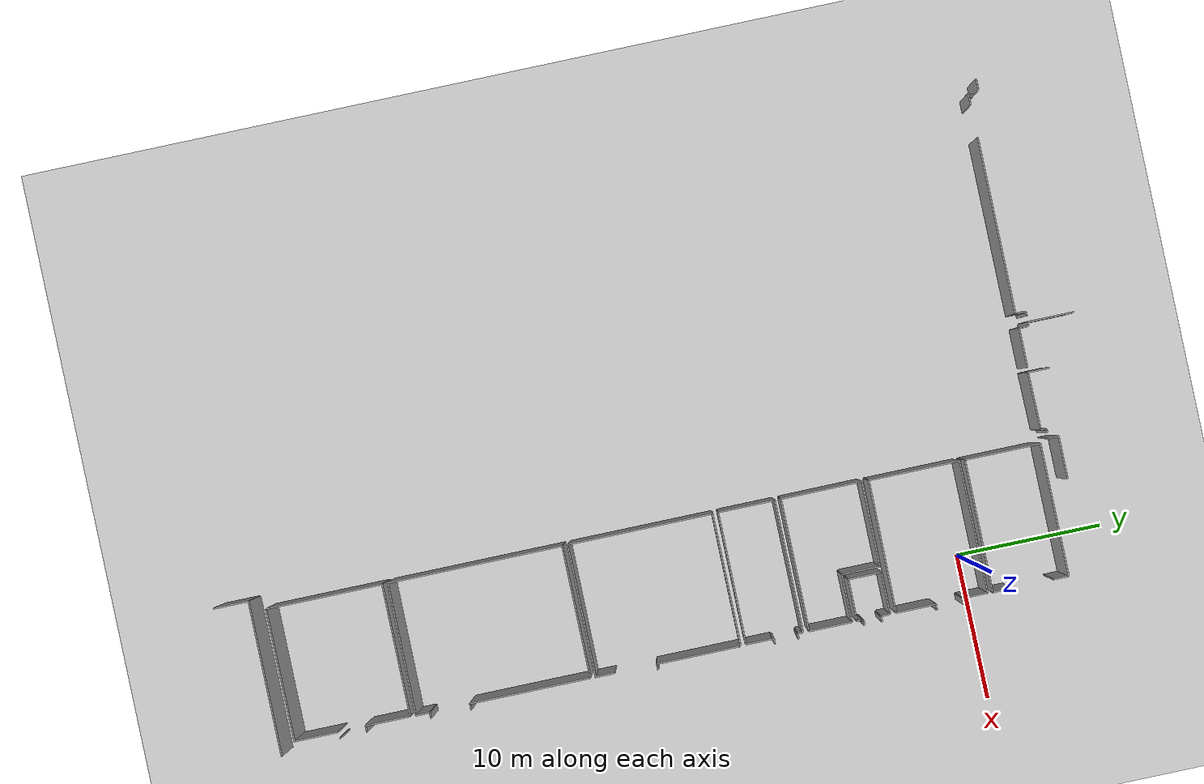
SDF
<sdf version="1.6">
 <world name="default">
  <model name="ground_plane">
   <static>1</static>
   <link name="link">
    <collision name="collision">
     <geometry><plane><normal>0 0 1</normal><size>100 100</size></plane></geometry>
     <surface><friction><ode><mu>100</mu><mu2>50</mu2></ode></friction></surface>
    </collision>
    <visual name="visual">
     <cast_shadows>0</cast_shadows>
     <geometry><plane><normal>0 0 1</normal><size>100 100</size></plane></geometry>
     <material>
      <script><uri>file://media/materials/scripts/gazebo.material</uri><name>Gazebo/Grey</name></script>
     </material>
    </visual>
   </link>
  </model>
  <model name="0510035739_A_40_1_102">
   <static>1</static>
   <link name="Wall_263">
    <collision name="Wall_263_Collision">
     <geometry><box><size>0.239437678066 0.1 2.5</size></box></geometry>
     <pose>0.119718839033 0 1.25 0 0 0</pose>
    </collision>
    <visual name="Wall_263_Visual">
     <pose>0.119718839033 0 1.25 0 0 0</pose>
     <geometry><box><size>0.239437678066 0.1 2.5</size></box></geometry>
     <material>
      <script><uri>file://media/materials/scripts/gazebo.material</uri><name>Gazebo/Grey</name></script>
      <ambient>1 1 1 1</ambient>
     </material>
    </visual>
    <pose>77.4300695516 -42.3644215988 0 0 0 3.14159265359</pose>
   </link>
   <link name="Wall_264">
    <collision name="Wall_264_Collision">
     <geometry><box><size>0.13298530871 0.1 2.5</size></box></geometry>
     <pose>0.0664926543552 0 1.25 0 0 0</pose>
    </collision>
    <visual name="Wall_264_Visual">
     <pose>0.0664926543552 0 1.25 0 0 0</pose>
     <geometry><box><size>0.13298530871 0.1 2.5</size></box></geometry>
     <material>
      <script><uri>file://media/materials/scripts/gazebo.material</uri><name>Gazebo/Grey</name></script>
      <ambient>1 1 1 1</ambient>
     </material>
    </visual>
    <pose>77.1906318735 -42.3644215988 0 0 0 -2.09873290124</pose>
   </link>
   <link name="Wall_265">
    <collision name="Wall_265_Collision">
     <geometry><box><size>0.603179171979 0.1 2.5</size></box></geometry>
     <pose>0.301589585989 0 1.25 0 0 0</pose>
    </collision>
    <visual name="Wall_265_Visual">
     <pose>0.301589585989 0 1.25 0 0 0</pose>
     <geometry><box><size>0.603179171979 0.1 2.5</size></box></geometry>
     <material>
      <script><uri>file://media/materials/scripts/gazebo.material</uri><name>Gazebo/Grey</name></script>
      <ambient>1 1 1 1</ambient>
     </material>
    </visual>
    <pose>77.1236402678 -42.4793007401 0 0 0 -1.57079632679</pose>
   </link>
   <link name="Wall_266">
    <collision name="Wall_266_Collision">
     <geometry><box><size>12.0536493231 0.1 2.5</size></box></geometry>
     <pose>6.02682466157 0 1.25 0 0 0</pose>
    </collision>
    <visual name="Wall_266_Visual">
     <pose>6.02682466157 0 1.25 0 0 0</pose>
     <geometry><box><size>12.0536493231 0.1 2.5</size></box></geometry>
     <material>
      <script><uri>file://media/materials/scripts/gazebo.material</uri><name>Gazebo/Grey</name></script>
      <ambient>1 1 1 1</ambient>
     </material>
    </visual>
    <pose>77.1236402678 -43.0824799121 0 0 0 3.14159265359</pose>
   </link>
   <link name="Wall_267">
    <collision name="Wall_267_Collision">
     <geometry><box><size>0.799314291245 0.1 2.5</size></box></geometry>
     <pose>0.399657145623 0 1.25 0 0 0</pose>
    </collision>
    <visual name="Wall_267_Visual">
     <pose>0.399657145623 0 1.25 0 0 0</pose>
     <geometry><box><size>0.799314291245 0.1 2.5</size></box></geometry>
     <material>
      <script><uri>file://media/materials/scripts/gazebo.material</uri><name>Gazebo/Grey</name></script>
      <ambient>1 1 1 1</ambient>
     </material>
    </visual>
    <pose>62.8801550741 -43.0824799121 0 0 0 3.14159265359</pose>
   </link>
   <link name="Wall_268">
    <collision name="Wall_268_Collision">
     <geometry><box><size>0.606490544122 0.1 2.5</size></box></geometry>
     <pose>0.303245272061 0 1.25 0 0 0</pose>
    </collision>
    <visual name="Wall_268_Visual">
     <pose>0.303245272061 0 1.25 0 0 0</pose>
     <geometry><box><size>0.606490544122 0.1 2.5</size></box></geometry>
     <material>
      <script><uri>file://media/materials/scripts/gazebo.material</uri><name>Gazebo/Grey</name></script>
      <ambient>1 1 1 1</ambient>
     </material>
    </visual>
    <pose>62.0808407829 -43.0824799121 0 0 0 1.57079632679</pose>
   </link>
   <link name="Wall_269">
    <collision name="Wall_269_Collision">
     <geometry><box><size>0.159152485242 0.1 2.5</size></box></geometry>
     <pose>0.0795762426211 0 1.25 0 0 0</pose>
    </collision>
    <visual name="Wall_269_Visual">
     <pose>0.0795762426211 0 1.25 0 0 0</pose>
     <geometry><box><size>0.159152485242 0.1 2.5</size></box></geometry>
     <material>
      <script><uri>file://media/materials/scripts/gazebo.material</uri><name>Gazebo/Grey</name></script>
      <ambient>1 1 1 1</ambient>
     </material>
    </visual>
    <pose>62.0808407829 -42.4759893679 0 0 0 2.39354969862</pose>
   </link>
   <link name="Wall_270">
    <collision name="Wall_270_Collision">
     <geometry><box><size>0.749388988159 0.1 2.5</size></box></geometry>
     <pose>0.37469449408 0 1.25 0 0 0</pose>
    </collision>
    <visual name="Wall_270_Visual">
     <pose>0.37469449408 0 1.25 0 0 0</pose>
     <geometry><box><size>0.749388988159 0.1 2.5</size></box></geometry>
     <material>
      <script><uri>file://media/materials/scripts/gazebo.material</uri><name>Gazebo/Grey</name></script>
      <ambient>1 1 1 1</ambient>
     </material>
    </visual>
    <pose>61.964178595 -42.367732971 0 0 0 3.14159265359</pose>
   </link>
   <link name="Wall_385">
    <collision name="Wall_385_Collision">
     <geometry><box><size>1.47559837131 0.1 2.5</size></box></geometry>
     <pose>0.737799185657 0 1.25 0 0 0</pose>
    </collision>
    <visual name="Wall_385_Visual">
     <pose>0.737799185657 0 1.25 0 0 0</pose>
     <geometry><box><size>1.47559837131 0.1 2.5</size></box></geometry>
     <material>
      <script><uri>file://media/materials/scripts/gazebo.material</uri><name>Gazebo/Grey</name></script>
      <ambient>1 1 1 1</ambient>
     </material>
    </visual>
    <pose>81.139825236 -43.0824799121 0 0 0 1.57079632679</pose>
   </link>
   <link name="Wall_397">
    <collision name="Wall_397_Collision">
     <geometry><box><size>0.215748631193 0.1 2.5</size></box></geometry>
     <pose>0.107874315597 0 1.25 0 0 0</pose>
    </collision>
    <visual name="Wall_397_Visual">
     <pose>0.107874315597 0 1.25 0 0 0</pose>
     <geometry><box><size>0.215748631193 0.1 2.5</size></box></geometry>
     <material>
      <script><uri>file://media/materials/scripts/gazebo.material</uri><name>Gazebo/Grey</name></script>
      <ambient>1 1 1 1</ambient>
     </material>
    </visual>
    <pose>85.3697210678 -42.6545487428 0 0 0 3.14159265359</pose>
   </link>
   <link name="Wall_398">
    <collision name="Wall_398_Collision">
     <geometry><box><size>0.139614028806 0.1 2.5</size></box></geometry>
     <pose>0.0698070144028 0 1.25 0 0 0</pose>
    </collision>
    <visual name="Wall_398_Visual">
     <pose>0.0698070144028 0 1.25 0 0 0</pose>
     <geometry><box><size>0.139614028806 0.1 2.5</size></box></geometry>
     <material>
      <script><uri>file://media/materials/scripts/gazebo.material</uri><name>Gazebo/Grey</name></script>
      <ambient>1 1 1 1</ambient>
     </material>
    </visual>
    <pose>85.1539724366 -42.6545487428 0 0 0 -2.30198409072</pose>
   </link>
   <link name="Wall_399">
    <collision name="Wall_399_Collision">
     <geometry><box><size>0.279174143787 0.1 2.5</size></box></geometry>
     <pose>0.139587071894 0 1.25 0 0 0</pose>
    </collision>
    <visual name="Wall_399_Visual">
     <pose>0.139587071894 0 1.25 0 0 0</pose>
     <geometry><box><size>0.279174143787 0.1 2.5</size></box></geometry>
     <material>
      <script><uri>file://media/materials/scripts/gazebo.material</uri><name>Gazebo/Grey</name></script>
      <ambient>1 1 1 1</ambient>
     </material>
    </visual>
    <pose>85.0607445748 -42.7584748839 0 0 0 -1.57079632679</pose>
   </link>
   <link name="Wall_400">
    <collision name="Wall_400_Collision">
     <geometry><box><size>3.9211756234 0.1 2.5</size></box></geometry>
     <pose>1.9605878117 0 1.25 0 0 0</pose>
    </collision>
    <visual name="Wall_400_Visual">
     <pose>1.9605878117 0 1.25 0 0 0</pose>
     <geometry><box><size>3.9211756234 0.1 2.5</size></box></geometry>
     <material>
      <script><uri>file://media/materials/scripts/gazebo.material</uri><name>Gazebo/Grey</name></script>
      <ambient>1 1 1 1</ambient>
     </material>
    </visual>
    <pose>85.0607445748 -43.0376490277 0 0 0 -3.1301593832</pose>
   </link>
   <link name="Wall_408">
    <collision name="Wall_408_Collision">
     <geometry><box><size>3.16439816448 0.1 2.5</size></box></geometry>
     <pose>1.58219908224 0 1.25 0 0 0</pose>
    </collision>
    <visual name="Wall_408_Visual">
     <pose>1.58219908224 0 1.25 0 0 0</pose>
     <geometry><box><size>3.16439816448 0.1 2.5</size></box></geometry>
     <material>
      <script><uri>file://media/materials/scripts/gazebo.material</uri><name>Gazebo/Grey</name></script>
      <ambient>1 1 1 1</ambient>
     </material>
    </visual>
    <pose>77.8427174648 -42.3847992735 0 0 0 1.57079632679</pose>
   </link>
   <link name="Wall_420">
    <collision name="Wall_420_Collision">
     <geometry><box><size>2.71659876231 0.1 2.5</size></box></geometry>
     <pose>1.35829938116 0 1.25 0 0 0</pose>
    </collision>
    <visual name="Wall_420_Visual">
     <pose>1.35829938116 0 1.25 0 0 0</pose>
     <geometry><box><size>2.71659876231 0.1 2.5</size></box></geometry>
     <material>
      <script><uri>file://media/materials/scripts/gazebo.material</uri><name>Gazebo/Grey</name></script>
      <ambient>1 1 1 1</ambient>
     </material>
    </visual>
    <pose>80.8219335102 -43.0447812138 0 0 0 3.14159265359</pose>
   </link>
   <link name="Wall_421">
    <collision name="Wall_421_Collision">
     <geometry><box><size>0.648519498251 0.1 2.5</size></box></geometry>
     <pose>0.324259749125 0 1.25 0 0 0</pose>
    </collision>
    <visual name="Wall_421_Visual">
     <pose>0.324259749125 0 1.25 0 0 0</pose>
     <geometry><box><size>0.648519498251 0.1 2.5</size></box></geometry>
     <material>
      <script><uri>file://media/materials/scripts/gazebo.material</uri><name>Gazebo/Grey</name></script>
      <ambient>1 1 1 1</ambient>
     </material>
    </visual>
    <pose>78.1053347479 -43.0447812138 0 0 0 1.57079632679</pose>
   </link>
   <link name="Wall_422">
    <collision name="Wall_422_Collision">
     <geometry><box><size>0.262867314333 0.1 2.5</size></box></geometry>
     <pose>0.131433657166 0 1.25 0 0 0</pose>
    </collision>
    <visual name="Wall_422_Visual">
     <pose>0.131433657166 0 1.25 0 0 0</pose>
     <geometry><box><size>0.262867314333 0.1 2.5</size></box></geometry>
     <material>
      <script><uri>file://media/materials/scripts/gazebo.material</uri><name>Gazebo/Grey</name></script>
      <ambient>1 1 1 1</ambient>
     </material>
    </visual>
    <pose>78.1053347479 -42.3962617156 0 0 0 3.09797339386</pose>
   </link>
   <link name="Wall_503">
    <collision name="Wall_503_Collision">
     <geometry><box><size>0.70481282469 0.1 2.5</size></box></geometry>
     <pose>0.352406412345 0 1.25 0 0 0</pose>
    </collision>
    <visual name="Wall_503_Visual">
     <pose>0.352406412345 0 1.25 0 0 0</pose>
     <geometry><box><size>0.70481282469 0.1 2.5</size></box></geometry>
     <material>
      <script><uri>file://media/materials/scripts/gazebo.material</uri><name>Gazebo/Grey</name></script>
      <ambient>1 1 1 1</ambient>
     </material>
    </visual>
    <pose>85.7319342361 -42.6751811384 0 0 0 1.57079632679</pose>
   </link>
   <link name="Wall_504">
    <collision name="Wall_504_Collision">
     <geometry><box><size>2.94024374246 0.1 2.5</size></box></geometry>
     <pose>1.47012187123 0 1.25 0 0 0</pose>
    </collision>
    <visual name="Wall_504_Visual">
     <pose>1.47012187123 0 1.25 0 0 0</pose>
     <geometry><box><size>2.94024374246 0.1 2.5</size></box></geometry>
     <material>
      <script><uri>file://media/materials/scripts/gazebo.material</uri><name>Gazebo/Grey</name></script>
      <ambient>1 1 1 1</ambient>
     </material>
    </visual>
    <pose>85.7319342361 -41.9703683137 0 0 0 0.0</pose>
   </link>
   <link name="Wall_578">
    <collision name="Wall_578_Collision">
     <geometry><box><size>5.16293861353 0.1 2.5</size></box></geometry>
     <pose>2.58146930676 0 1.25 0 0 0</pose>
    </collision>
    <visual name="Wall_578_Visual">
     <pose>2.58146930676 0 1.25 0 0 0</pose>
     <geometry><box><size>5.16293861353 0.1 2.5</size></box></geometry>
     <material>
      <script><uri>file://media/materials/scripts/gazebo.material</uri><name>Gazebo/Grey</name></script>
      <ambient>1 1 1 1</ambient>
     </material>
    </visual>
    <pose>85.9667869374 -48.4219401329 0 0 0 1.57079632679</pose>
   </link>
   <link name="Wall_579">
    <collision name="Wall_579_Collision">
     <geometry><box><size>9.05227255649 0.1 2.5</size></box></geometry>
     <pose>4.52613627825 0 1.25 0 0 0</pose>
    </collision>
    <visual name="Wall_579_Visual">
     <pose>4.52613627825 0 1.25 0 0 0</pose>
     <geometry><box><size>9.05227255649 0.1 2.5</size></box></geometry>
     <material>
      <script><uri>file://media/materials/scripts/gazebo.material</uri><name>Gazebo/Grey</name></script>
      <ambient>1 1 1 1</ambient>
     </material>
    </visual>
    <pose>85.9667869374 -43.2590015194 0 0 0 0.0</pose>
   </link>
   <link name="Wall_580">
    <collision name="Wall_580_Collision">
     <geometry><box><size>1.03773308557 0.1 2.5</size></box></geometry>
     <pose>0.518866542787 0 1.25 0 0 0</pose>
    </collision>
    <visual name="Wall_580_Visual">
     <pose>0.518866542787 0 1.25 0 0 0</pose>
     <geometry><box><size>1.03773308557 0.1 2.5</size></box></geometry>
     <material>
      <script><uri>file://media/materials/scripts/gazebo.material</uri><name>Gazebo/Grey</name></script>
      <ambient>1 1 1 1</ambient>
     </material>
    </visual>
    <pose>95.0190594939 -43.2590015194 0 0 0 -1.57079632679</pose>
   </link>
   <link name="Wall_581">
    <collision name="Wall_581_Collision">
     <geometry><box><size>1.2962748337 0.1 2.5</size></box></geometry>
     <pose>0.64813741685 0 1.25 0 0 0</pose>
    </collision>
    <visual name="Wall_581_Visual">
     <pose>0.64813741685 0 1.25 0 0 0</pose>
     <geometry><box><size>1.2962748337 0.1 2.5</size></box></geometry>
     <material>
      <script><uri>file://media/materials/scripts/gazebo.material</uri><name>Gazebo/Grey</name></script>
      <ambient>1 1 1 1</ambient>
     </material>
    </visual>
    <pose>95.0190594939 -47.1549582067 0 0 0 -1.57079632679</pose>
   </link>
   <link name="Wall_582">
    <collision name="Wall_582_Collision">
     <geometry><box><size>9.0523199519 0.1 2.5</size></box></geometry>
     <pose>4.52615997595 0 1.25 0 0 0</pose>
    </collision>
    <visual name="Wall_582_Visual">
     <pose>4.52615997595 0 1.25 0 0 0</pose>
     <geometry><box><size>9.0523199519 0.1 2.5</size></box></geometry>
     <material>
      <script><uri>file://media/materials/scripts/gazebo.material</uri><name>Gazebo/Grey</name></script>
      <ambient>1 1 1 1</ambient>
     </material>
    </visual>
    <pose>95.0190594939 -48.4512330404 0 0 0 3.13835669212</pose>
   </link>
   <link name="Wall_583">
    <collision name="Wall_583_Collision">
     <geometry><box><size>6.21468135048 0.1 2.5</size></box></geometry>
     <pose>3.10734067524 0 1.25 0 0 0</pose>
    </collision>
    <visual name="Wall_583_Visual">
     <pose>3.10734067524 0 1.25 0 0 0</pose>
     <geometry><box><size>6.21468135048 0.1 2.5</size></box></geometry>
     <material>
      <script><uri>file://media/materials/scripts/gazebo.material</uri><name>Gazebo/Grey</name></script>
      <ambient>1 1 1 1</ambient>
     </material>
    </visual>
    <pose>85.9622019606 -54.9950138377 0 0 0 1.57079632679</pose>
   </link>
   <link name="Wall_584">
    <collision name="Wall_584_Collision">
     <geometry><box><size>9.02043243973 0.1 2.5</size></box></geometry>
     <pose>4.51021621986 0 1.25 0 0 0</pose>
    </collision>
    <visual name="Wall_584_Visual">
     <pose>4.51021621986 0 1.25 0 0 0</pose>
     <geometry><box><size>9.02043243973 0.1 2.5</size></box></geometry>
     <material>
      <script><uri>file://media/materials/scripts/gazebo.material</uri><name>Gazebo/Grey</name></script>
      <ambient>1 1 1 1</ambient>
     </material>
    </visual>
    <pose>85.9622019606 -48.7803324872 0 0 0 0.0</pose>
   </link>
   <link name="Wall_585">
    <collision name="Wall_585_Collision">
     <geometry><box><size>1.72344184021 0.1 2.5</size></box></geometry>
     <pose>0.861720920103 0 1.25 0 0 0</pose>
    </collision>
    <visual name="Wall_585_Visual">
     <pose>0.861720920103 0 1.25 0 0 0</pose>
     <geometry><box><size>1.72344184021 0.1 2.5</size></box></geometry>
     <material>
      <script><uri>file://media/materials/scripts/gazebo.material</uri><name>Gazebo/Grey</name></script>
      <ambient>1 1 1 1</ambient>
     </material>
    </visual>
    <pose>94.9826344003 -48.7803324872 0 0 0 -1.57079632679</pose>
   </link>
   <link name="Wall_586">
    <collision name="Wall_586_Collision">
     <geometry><box><size>0.421308425022 0.1 2.5</size></box></geometry>
     <pose>0.210654212511 0 1.25 0 0 0</pose>
    </collision>
    <visual name="Wall_586_Visual">
     <pose>0.210654212511 0 1.25 0 0 0</pose>
     <geometry><box><size>0.421308425022 0.1 2.5</size></box></geometry>
     <material>
      <script><uri>file://media/materials/scripts/gazebo.material</uri><name>Gazebo/Grey</name></script>
      <ambient>1 1 1 1</ambient>
     </material>
    </visual>
    <pose>94.9826344003 -50.5037743274 0 0 0 0.0</pose>
   </link>
   <link name="Wall_587">
    <collision name="Wall_587_Collision">
     <geometry><box><size>0.39889298282 0.1 2.5</size></box></geometry>
     <pose>0.19944649141 0 1.25 0 0 0</pose>
    </collision>
    <visual name="Wall_587_Visual">
     <pose>0.19944649141 0 1.25 0 0 0</pose>
     <geometry><box><size>0.39889298282 0.1 2.5</size></box></geometry>
     <material>
      <script><uri>file://media/materials/scripts/gazebo.material</uri><name>Gazebo/Grey</name></script>
      <ambient>1 1 1 1</ambient>
     </material>
    </visual>
    <pose>95.4039428253 -52.3349631228 0 0 0 3.14159265359</pose>
   </link>
   <link name="Wall_588">
    <collision name="Wall_588_Collision">
     <geometry><box><size>2.72806120435 0.1 2.5</size></box></geometry>
     <pose>1.36403060217 0 1.25 0 0 0</pose>
    </collision>
    <visual name="Wall_588_Visual">
     <pose>1.36403060217 0 1.25 0 0 0</pose>
     <geometry><box><size>2.72806120435 0.1 2.5</size></box></geometry>
     <material>
      <script><uri>file://media/materials/scripts/gazebo.material</uri><name>Gazebo/Grey</name></script>
      <ambient>1 1 1 1</ambient>
     </material>
    </visual>
    <pose>95.0050498425 -52.3349631228 0 0 0 -1.57079632679</pose>
   </link>
   <link name="Wall_589">
    <collision name="Wall_589_Collision">
     <geometry><box><size>9.04310362887 0.1 2.5</size></box></geometry>
     <pose>4.52155181443 0 1.25 0 0 0</pose>
    </collision>
    <visual name="Wall_589_Visual">
     <pose>4.52155181443 0 1.25 0 0 0</pose>
     <geometry><box><size>9.04310362887 0.1 2.5</size></box></geometry>
     <material>
      <script><uri>file://media/materials/scripts/gazebo.material</uri><name>Gazebo/Grey</name></script>
      <ambient>1 1 1 1</ambient>
     </material>
    </visual>
    <pose>95.0050498425 -55.0630243271 0 0 0 3.13407188049</pose>
   </link>
   <link name="Wall_590">
    <collision name="Wall_590_Collision">
     <geometry><box><size>9.04030067259 0.1 2.5</size></box></geometry>
     <pose>4.5201503363 0 1.25 0 0 0</pose>
    </collision>
    <visual name="Wall_590_Visual">
     <pose>4.5201503363 0 1.25 0 0 0</pose>
     <geometry><box><size>9.04030067259 0.1 2.5</size></box></geometry>
     <material>
      <script><uri>file://media/materials/scripts/gazebo.material</uri><name>Gazebo/Grey</name></script>
      <ambient>1 1 1 1</ambient>
     </material>
    </visual>
    <pose>85.953032007 -61.0020976269 0 0 0 0.0</pose>
   </link>
   <link name="Wall_591">
    <collision name="Wall_591_Collision">
     <geometry><box><size>2.9427909518 0.1 2.5</size></box></geometry>
     <pose>1.4713954759 0 1.25 0 0 0</pose>
    </collision>
    <visual name="Wall_591_Visual">
     <pose>1.4713954759 0 1.25 0 0 0</pose>
     <geometry><box><size>2.9427909518 0.1 2.5</size></box></geometry>
     <material>
      <script><uri>file://media/materials/scripts/gazebo.material</uri><name>Gazebo/Grey</name></script>
      <ambient>1 1 1 1</ambient>
     </material>
    </visual>
    <pose>94.9933326795 -61.0020976269 0 0 0 1.57079632679</pose>
   </link>
   <link name="Wall_592">
    <collision name="Wall_592_Collision">
     <geometry><box><size>3.23775779351 0.1 2.5</size></box></geometry>
     <pose>1.61887889675 0 1.25 0 0 0</pose>
    </collision>
    <visual name="Wall_592_Visual">
     <pose>1.61887889675 0 1.25 0 0 0</pose>
     <geometry><box><size>3.23775779351 0.1 2.5</size></box></geometry>
     <material>
      <script><uri>file://media/materials/scripts/gazebo.material</uri><name>Gazebo/Grey</name></script>
      <ambient>1 1 1 1</ambient>
     </material>
    </visual>
    <pose>94.9933326795 -58.0593066751 0 0 0 3.14159265359</pose>
   </link>
   <link name="Wall_593">
    <collision name="Wall_593_Collision">
     <geometry><box><size>2.60095545822 0.1 2.5</size></box></geometry>
     <pose>1.30047772911 0 1.25 0 0 0</pose>
    </collision>
    <visual name="Wall_593_Visual">
     <pose>1.30047772911 0 1.25 0 0 0</pose>
     <geometry><box><size>2.60095545822 0.1 2.5</size></box></geometry>
     <material>
      <script><uri>file://media/materials/scripts/gazebo.material</uri><name>Gazebo/Grey</name></script>
      <ambient>1 1 1 1</ambient>
     </material>
    </visual>
    <pose>91.755574886 -58.0593066751 0 0 0 1.57079632679</pose>
   </link>
   <link name="Wall_594">
    <collision name="Wall_594_Collision">
     <geometry><box><size>5.81935446074 0.1 2.5</size></box></geometry>
     <pose>2.90967723037 0 1.25 0 0 0</pose>
    </collision>
    <visual name="Wall_594_Visual">
     <pose>2.90967723037 0 1.25 0 0 0</pose>
     <geometry><box><size>5.81935446074 0.1 2.5</size></box></geometry>
     <material>
      <script><uri>file://media/materials/scripts/gazebo.material</uri><name>Gazebo/Grey</name></script>
      <ambient>1 1 1 1</ambient>
     </material>
    </visual>
    <pose>91.755574886 -55.4583512169 0 0 0 3.14159265359</pose>
   </link>
   <link name="Wall_595">
    <collision name="Wall_595_Collision">
     <geometry><box><size>5.54377190079 0.1 2.5</size></box></geometry>
     <pose>2.77188595039 0 1.25 0 0 0</pose>
    </collision>
    <visual name="Wall_595_Visual">
     <pose>2.77188595039 0 1.25 0 0 0</pose>
     <geometry><box><size>5.54377190079 0.1 2.5</size></box></geometry>
     <material>
      <script><uri>file://media/materials/scripts/gazebo.material</uri><name>Gazebo/Grey</name></script>
      <ambient>1 1 1 1</ambient>
     </material>
    </visual>
    <pose>85.9362204253 -55.4583512169 0 0 0 -1.56776380531</pose>
   </link>
   <link name="Wall_596">
    <collision name="Wall_596_Collision">
     <geometry><box><size>3.87583373346 0.1 2.5</size></box></geometry>
     <pose>1.93791686673 0 1.25 0 0 0</pose>
    </collision>
    <visual name="Wall_596_Visual">
     <pose>1.93791686673 0 1.25 0 0 0</pose>
     <geometry><box><size>3.87583373346 0.1 2.5</size></box></geometry>
     <material>
      <script><uri>file://media/materials/scripts/gazebo.material</uri><name>Gazebo/Grey</name></script>
      <ambient>1 1 1 1</ambient>
     </material>
    </visual>
    <pose>85.9520131232 -65.2944000876 0 0 0 1.57079632679</pose>
   </link>
   <link name="Wall_597">
    <collision name="Wall_597_Collision">
     <geometry><box><size>9.0418289982 0.1 2.5</size></box></geometry>
     <pose>4.5209144991 0 1.25 0 0 0</pose>
    </collision>
    <visual name="Wall_597_Visual">
     <pose>4.5209144991 0 1.25 0 0 0</pose>
     <geometry><box><size>9.0418289982 0.1 2.5</size></box></geometry>
     <material>
      <script><uri>file://media/materials/scripts/gazebo.material</uri><name>Gazebo/Grey</name></script>
      <ambient>1 1 1 1</ambient>
     </material>
    </visual>
    <pose>85.9520131232 -61.4185663542 0 0 0 0.0</pose>
   </link>
   <link name="Wall_598">
    <collision name="Wall_598_Collision">
     <geometry><box><size>0.36730758699 0.1 2.5</size></box></geometry>
     <pose>0.183653793495 0 1.25 0 0 0</pose>
    </collision>
    <visual name="Wall_598_Visual">
     <pose>0.183653793495 0 1.25 0 0 0</pose>
     <geometry><box><size>0.36730758699 0.1 2.5</size></box></geometry>
     <material>
      <script><uri>file://media/materials/scripts/gazebo.material</uri><name>Gazebo/Grey</name></script>
      <ambient>1 1 1 1</ambient>
     </material>
    </visual>
    <pose>94.9938421214 -61.4185663542 0 0 0 -1.57079632679</pose>
   </link>
   <link name="Wall_599">
    <collision name="Wall_599_Collision">
     <geometry><box><size>0.392524959468 0.1 2.5</size></box></geometry>
     <pose>0.196262479734 0 1.25 0 0 0</pose>
    </collision>
    <visual name="Wall_599_Visual">
     <pose>0.196262479734 0 1.25 0 0 0</pose>
     <geometry><box><size>0.392524959468 0.1 2.5</size></box></geometry>
     <material>
      <script><uri>file://media/materials/scripts/gazebo.material</uri><name>Gazebo/Grey</name></script>
      <ambient>1 1 1 1</ambient>
     </material>
    </visual>
    <pose>94.9938421214 -61.7858739412 0 0 0 0.0</pose>
   </link>
   <link name="Wall_600">
    <collision name="Wall_600_Collision">
     <geometry><box><size>0.337759958633 0.1 2.5</size></box></geometry>
     <pose>0.168879979317 0 1.25 0 0 0</pose>
    </collision>
    <visual name="Wall_600_Visual">
     <pose>0.168879979317 0 1.25 0 0 0</pose>
     <geometry><box><size>0.337759958633 0.1 2.5</size></box></geometry>
     <material>
      <script><uri>file://media/materials/scripts/gazebo.material</uri><name>Gazebo/Grey</name></script>
      <ambient>1 1 1 1</ambient>
     </material>
    </visual>
    <pose>95.3863670809 -63.4071726868 0 0 0 3.14159265359</pose>
   </link>
   <link name="Wall_601">
    <collision name="Wall_601_Collision">
     <geometry><box><size>0.149255382706 0.1 2.5</size></box></geometry>
     <pose>0.0746276913528 0 1.25 0 0 0</pose>
    </collision>
    <visual name="Wall_601_Visual">
     <pose>0.0746276913528 0 1.25 0 0 0</pose>
     <geometry><box><size>0.149255382706 0.1 2.5</size></box></geometry>
     <material>
      <script><uri>file://media/materials/scripts/gazebo.material</uri><name>Gazebo/Grey</name></script>
      <ambient>1 1 1 1</ambient>
     </material>
    </visual>
    <pose>95.0486071223 -63.4071726868 0 0 0 -2.05352558899</pose>
   </link>
   <link name="Wall_602">
    <collision name="Wall_602_Collision">
     <geometry><box><size>1.7659802362 0.1 2.5</size></box></geometry>
     <pose>0.882990118101 0 1.25 0 0 0</pose>
    </collision>
    <visual name="Wall_602_Visual">
     <pose>0.882990118101 0 1.25 0 0 0</pose>
     <geometry><box><size>1.7659802362 0.1 2.5</size></box></geometry>
     <material>
      <script><uri>file://media/materials/scripts/gazebo.material</uri><name>Gazebo/Grey</name></script>
      <ambient>1 1 1 1</ambient>
     </material>
    </visual>
    <pose>94.9793230282 -63.5393728516 0 0 0 -1.57079632679</pose>
   </link>
   <link name="Wall_603">
    <collision name="Wall_603_Collision">
     <geometry><box><size>9.02731654969 0.1 2.5</size></box></geometry>
     <pose>4.51365827484 0 1.25 0 0 0</pose>
    </collision>
    <visual name="Wall_603_Visual">
     <pose>4.51365827484 0 1.25 0 0 0</pose>
     <geometry><box><size>9.02731654969 0.1 2.5</size></box></geometry>
     <material>
      <script><uri>file://media/materials/scripts/gazebo.material</uri><name>Gazebo/Grey</name></script>
      <ambient>1 1 1 1</ambient>
     </material>
    </visual>
    <pose>94.9793230282 -65.3053530878 0 0 0 3.1403793359</pose>
   </link>
   <link name="Wall_604">
    <collision name="Wall_604_Collision">
     <geometry><box><size>9.88877610412 0.1 2.5</size></box></geometry>
     <pose>4.94438805206 0 1.25 0 0 0</pose>
    </collision>
    <visual name="Wall_604_Visual">
     <pose>4.94438805206 0 1.25 0 0 0</pose>
     <geometry><box><size>9.88877610412 0.1 2.5</size></box></geometry>
     <material>
      <script><uri>file://media/materials/scripts/gazebo.material</uri><name>Gazebo/Grey</name></script>
      <ambient>1 1 1 1</ambient>
     </material>
    </visual>
    <pose>85.9622019606 -75.5670406395 0 0 0 1.57079632679</pose>
   </link>
   <link name="Wall_605">
    <collision name="Wall_605_Collision">
     <geometry><box><size>9.04870646342 0.1 2.5</size></box></geometry>
     <pose>4.52435323171 0 1.25 0 0 0</pose>
    </collision>
    <visual name="Wall_605_Visual">
     <pose>4.52435323171 0 1.25 0 0 0</pose>
     <geometry><box><size>9.04870646342 0.1 2.5</size></box></geometry>
     <material>
      <script><uri>file://media/materials/scripts/gazebo.material</uri><name>Gazebo/Grey</name></script>
      <ambient>1 1 1 1</ambient>
     </material>
    </visual>
    <pose>85.9622019606 -65.6782645353 0 0 0 0.0</pose>
   </link>
   <link name="Wall_606">
    <collision name="Wall_606_Collision">
     <geometry><box><size>5.73147573847 0.1 2.5</size></box></geometry>
     <pose>2.86573786923 0 1.25 0 0 0</pose>
    </collision>
    <visual name="Wall_606_Visual">
     <pose>2.86573786923 0 1.25 0 0 0</pose>
     <geometry><box><size>5.73147573847 0.1 2.5</size></box></geometry>
     <material>
      <script><uri>file://media/materials/scripts/gazebo.material</uri><name>Gazebo/Grey</name></script>
      <ambient>1 1 1 1</ambient>
     </material>
    </visual>
    <pose>95.010908424 -65.6782645353 0 0 0 -1.57079632679</pose>
   </link>
   <link name="Wall_607">
    <collision name="Wall_607_Collision">
     <geometry><box><size>0.434553913596 0.1 2.5</size></box></geometry>
     <pose>0.217276956798 0 1.25 0 0 0</pose>
    </collision>
    <visual name="Wall_607_Visual">
     <pose>0.217276956798 0 1.25 0 0 0</pose>
     <geometry><box><size>0.434553913596 0.1 2.5</size></box></geometry>
     <material>
      <script><uri>file://media/materials/scripts/gazebo.material</uri><name>Gazebo/Grey</name></script>
      <ambient>1 1 1 1</ambient>
     </material>
    </visual>
    <pose>95.010908424 -71.4097402738 0 0 0 0.0</pose>
   </link>
   <link name="Wall_611">
    <collision name="Wall_611_Collision">
     <geometry><box><size>1.3291338342 0.1 2.5</size></box></geometry>
     <pose>0.6645669171 0 1.25 0 0 0</pose>
    </collision>
    <visual name="Wall_611_Visual">
     <pose>0.6645669171 0 1.25 0 0 0</pose>
     <geometry><box><size>1.3291338342 0.1 2.5</size></box></geometry>
     <material>
      <script><uri>file://media/materials/scripts/gazebo.material</uri><name>Gazebo/Grey</name></script>
      <ambient>1 1 1 1</ambient>
     </material>
    </visual>
    <pose>95.0114178659 -74.2615958521 0 0 0 -1.57079632679</pose>
   </link>
   <link name="Wall_612">
    <collision name="Wall_612_Collision">
     <geometry><box><size>9.04924691184 0.1 2.5</size></box></geometry>
     <pose>4.52462345592 0 1.25 0 0 0</pose>
    </collision>
    <visual name="Wall_612_Visual">
     <pose>4.52462345592 0 1.25 0 0 0</pose>
     <geometry><box><size>9.04924691184 0.1 2.5</size></box></geometry>
     <material>
      <script><uri>file://media/materials/scripts/gazebo.material</uri><name>Gazebo/Grey</name></script>
      <ambient>1 1 1 1</ambient>
     </material>
    </visual>
    <pose>95.0114178659 -75.5907296863 0 0 0 3.13897485852</pose>
   </link>
   <link name="Wall_613">
    <collision name="Wall_613_Collision">
     <geometry><box><size>11.9296002282 0.1 2.5</size></box></geometry>
     <pose>5.96480011411 0 1.25 0 0 0</pose>
    </collision>
    <visual name="Wall_613_Visual">
     <pose>5.96480011411 0 1.25 0 0 0</pose>
     <geometry><box><size>11.9296002282 0.1 2.5</size></box></geometry>
     <material>
      <script><uri>file://media/materials/scripts/gazebo.material</uri><name>Gazebo/Grey</name></script>
      <ambient>1 1 1 1</ambient>
     </material>
    </visual>
    <pose>85.9642397281 -87.8738825711 0 0 0 1.57079632679</pose>
   </link>
   <link name="Wall_614">
    <collision name="Wall_614_Collision">
     <geometry><box><size>9.02960239336 0.1 2.5</size></box></geometry>
     <pose>4.51480119668 0 1.25 0 0 0</pose>
    </collision>
    <visual name="Wall_614_Visual">
     <pose>4.51480119668 0 1.25 0 0 0</pose>
     <geometry><box><size>9.02960239336 0.1 2.5</size></box></geometry>
     <material>
      <script><uri>file://media/materials/scripts/gazebo.material</uri><name>Gazebo/Grey</name></script>
      <ambient>1 1 1 1</ambient>
     </material>
    </visual>
    <pose>85.9642397281 -75.9442823429 0 0 0 0.0</pose>
   </link>
   <link name="Wall_615">
    <collision name="Wall_615_Collision">
     <geometry><box><size>8.23181642772 0.1 2.5</size></box></geometry>
     <pose>4.11590821386 0 1.25 0 0 0</pose>
    </collision>
    <visual name="Wall_615_Visual">
     <pose>4.11590821386 0 1.25 0 0 0</pose>
     <geometry><box><size>8.23181642772 0.1 2.5</size></box></geometry>
     <material>
      <script><uri>file://media/materials/scripts/gazebo.material</uri><name>Gazebo/Grey</name></script>
      <ambient>1 1 1 1</ambient>
     </material>
    </visual>
    <pose>94.9938421214 -75.9442823429 0 0 0 -1.57079632679</pose>
   </link>
   <link name="Wall_616">
    <collision name="Wall_616_Collision">
     <geometry><box><size>0.439393611344 0.1 2.5</size></box></geometry>
     <pose>0.219696805672 0 1.25 0 0 0</pose>
    </collision>
    <visual name="Wall_616_Visual">
     <pose>0.219696805672 0 1.25 0 0 0</pose>
     <geometry><box><size>0.439393611344 0.1 2.5</size></box></geometry>
     <material>
      <script><uri>file://media/materials/scripts/gazebo.material</uri><name>Gazebo/Grey</name></script>
      <ambient>1 1 1 1</ambient>
     </material>
    </visual>
    <pose>94.9938421214 -84.1760987706 0 0 0 0.0</pose>
   </link>
   <link name="Wall_617">
    <collision name="Wall_617_Collision">
     <geometry><box><size>0.422072587825 0.1 2.5</size></box></geometry>
     <pose>0.211036293912 0 1.25 0 0 0</pose>
    </collision>
    <visual name="Wall_617_Visual">
     <pose>0.211036293912 0 1.25 0 0 0</pose>
     <geometry><box><size>0.422072587825 0.1 2.5</size></box></geometry>
     <material>
      <script><uri>file://media/materials/scripts/gazebo.material</uri><name>Gazebo/Grey</name></script>
      <ambient>1 1 1 1</ambient>
     </material>
    </visual>
    <pose>95.4332357328 -86.9275943009 0 0 0 3.14159265359</pose>
   </link>
   <link name="Wall_618">
    <collision name="Wall_618_Collision">
     <geometry><box><size>0.96309985188 0.1 2.5</size></box></geometry>
     <pose>0.48154992594 0 1.25 0 0 0</pose>
    </collision>
    <visual name="Wall_618_Visual">
     <pose>0.48154992594 0 1.25 0 0 0</pose>
     <geometry><box><size>0.96309985188 0.1 2.5</size></box></geometry>
     <material>
      <script><uri>file://media/materials/scripts/gazebo.material</uri><name>Gazebo/Grey</name></script>
      <ambient>1 1 1 1</ambient>
     </material>
    </visual>
    <pose>95.0111631449 -86.9275943009 0 0 0 -1.57079632679</pose>
   </link>
   <link name="Wall_619">
    <collision name="Wall_619_Collision">
     <geometry><box><size>9.04693903705 0.1 2.5</size></box></geometry>
     <pose>4.52346951853 0 1.25 0 0 0</pose>
    </collision>
    <visual name="Wall_619_Visual">
     <pose>4.52346951853 0 1.25 0 0 0</pose>
     <geometry><box><size>9.04693903705 0.1 2.5</size></box></geometry>
     <material>
      <script><uri>file://media/materials/scripts/gazebo.material</uri><name>Gazebo/Grey</name></script>
      <ambient>1 1 1 1</ambient>
     </material>
    </visual>
    <pose>95.0111631449 -87.8906941528 0 0 0 3.13973439067</pose>
   </link>
   <link name="Wall_620">
    <collision name="Wall_620_Collision">
     <geometry><box><size>7.93812319069 0.1 2.5</size></box></geometry>
     <pose>3.96906159534 0 1.25 0 0 0</pose>
    </collision>
    <visual name="Wall_620_Visual">
     <pose>3.96906159534 0 1.25 0 0 0</pose>
     <geometry><box><size>7.93812319069 0.1 2.5</size></box></geometry>
     <material>
      <script><uri>file://media/materials/scripts/gazebo.material</uri><name>Gazebo/Grey</name></script>
      <ambient>1 1 1 1</ambient>
     </material>
    </visual>
    <pose>85.9588905884 -96.1920493955 0 0 0 1.57079632679</pose>
   </link>
   <link name="Wall_621">
    <collision name="Wall_621_Collision">
     <geometry><box><size>9.02297964907 0.1 2.5</size></box></geometry>
     <pose>4.51148982454 0 1.25 0 0 0</pose>
    </collision>
    <visual name="Wall_621_Visual">
     <pose>4.51148982454 0 1.25 0 0 0</pose>
     <geometry><box><size>9.02297964907 0.1 2.5</size></box></geometry>
     <material>
      <script><uri>file://media/materials/scripts/gazebo.material</uri><name>Gazebo/Grey</name></script>
      <ambient>1 1 1 1</ambient>
     </material>
    </visual>
    <pose>85.9588905884 -88.2539262048 0 0 0 0.0</pose>
   </link>
   <link name="Wall_622">
    <collision name="Wall_622_Collision">
     <geometry><box><size>3.05843425589 0.1 2.5</size></box></geometry>
     <pose>1.52921712795 0 1.25 0 0 0</pose>
    </collision>
    <visual name="Wall_622_Visual">
     <pose>1.52921712795 0 1.25 0 0 0</pose>
     <geometry><box><size>3.05843425589 0.1 2.5</size></box></geometry>
     <material>
      <script><uri>file://media/materials/scripts/gazebo.material</uri><name>Gazebo/Grey</name></script>
      <ambient>1 1 1 1</ambient>
     </material>
    </visual>
    <pose>94.9818702375 -88.2539262048 0 0 0 -1.57079632679</pose>
   </link>
   <link name="Wall_623">
    <collision name="Wall_623_Collision">
     <geometry><box><size>0.457224076732 0.1 2.5</size></box></geometry>
     <pose>0.228612038366 0 1.25 0 0 0</pose>
    </collision>
    <visual name="Wall_623_Visual">
     <pose>0.228612038366 0 1.25 0 0 0</pose>
     <geometry><box><size>0.457224076732 0.1 2.5</size></box></geometry>
     <material>
      <script><uri>file://media/materials/scripts/gazebo.material</uri><name>Gazebo/Grey</name></script>
      <ambient>1 1 1 1</ambient>
     </material>
    </visual>
    <pose>94.9818702375 -91.3123604607 0 0 0 0.0</pose>
   </link>
   <link name="Wall_624">
    <collision name="Wall_624_Collision">
     <geometry><box><size>0.0990864433698 0.1 2.5</size></box></geometry>
     <pose>0.0495432216849 0 1.25 0 0 0</pose>
    </collision>
    <visual name="Wall_624_Visual">
     <pose>0.0495432216849 0 1.25 0 0 0</pose>
     <geometry><box><size>0.0990864433698 0.1 2.5</size></box></geometry>
     <material>
      <script><uri>file://media/materials/scripts/gazebo.material</uri><name>Gazebo/Grey</name></script>
      <ambient>1 1 1 1</ambient>
     </material>
    </visual>
    <pose>95.4390943142 -93.0892936971 0 0 0 -1.57079632679</pose>
   </link>
   <link name="Wall_626">
    <collision name="Wall_626_Collision">
     <geometry><box><size>2.98813127808 0.1 2.5</size></box></geometry>
     <pose>1.49406563904 0 1.25 0 0 0</pose>
    </collision>
    <visual name="Wall_626_Visual">
     <pose>1.49406563904 0 1.25 0 0 0</pose>
     <geometry><box><size>2.98813127808 0.1 2.5</size></box></geometry>
     <material>
      <script><uri>file://media/materials/scripts/gazebo.material</uri><name>Gazebo/Grey</name></script>
      <ambient>1 1 1 1</ambient>
     </material>
    </visual>
    <pose>95.0042856797 -93.1883801404 0 0 0 -1.57079632679</pose>
   </link>
   <link name="Wall_627">
    <collision name="Wall_627_Collision">
     <geometry><box><size>9.04540843666 0.1 2.5</size></box></geometry>
     <pose>4.52270421833 0 1.25 0 0 0</pose>
    </collision>
    <visual name="Wall_627_Visual">
     <pose>4.52270421833 0 1.25 0 0 0</pose>
     <geometry><box><size>9.04540843666 0.1 2.5</size></box></geometry>
     <material>
      <script><uri>file://media/materials/scripts/gazebo.material</uri><name>Gazebo/Grey</name></script>
      <ambient>1 1 1 1</ambient>
     </material>
    </visual>
    <pose>95.0042856797 -96.1765114185 0 0 0 -3.13987487769</pose>
   </link>
   <link name="Wall_628">
    <collision name="Wall_628_Collision">
     <geometry><box><size>2.39055596665 0.1 2.5</size></box></geometry>
     <pose>1.19527798332 0 1.25 0 0 0</pose>
    </collision>
    <visual name="Wall_628_Visual">
     <pose>1.19527798332 0 1.25 0 0 0</pose>
     <geometry><box><size>2.39055596665 0.1 2.5</size></box></geometry>
     <material>
      <script><uri>file://media/materials/scripts/gazebo.material</uri><name>Gazebo/Grey</name></script>
      <ambient>1 1 1 1</ambient>
     </material>
    </visual>
    <pose>85.1993127629 -99.6157534709 0 0 0 1.57079632679</pose>
   </link>
   <link name="Wall_629">
    <collision name="Wall_629_Collision">
     <geometry><box><size>10.6259384874 0.1 2.5</size></box></geometry>
     <pose>5.31296924372 0 1.25 0 0 0</pose>
    </collision>
    <visual name="Wall_629_Visual">
     <pose>5.31296924372 0 1.25 0 0 0</pose>
     <geometry><box><size>10.6259384874 0.1 2.5</size></box></geometry>
     <material>
      <script><uri>file://media/materials/scripts/gazebo.material</uri><name>Gazebo/Grey</name></script>
      <ambient>1 1 1 1</ambient>
     </material>
    </visual>
    <pose>85.1993127629 -97.2251975042 0 0 0 0.0</pose>
   </link>
   <link name="Wall_712">
    <collision name="Wall_712_Collision">
     <geometry><box><size>2.26854463921 0.1 2.5</size></box></geometry>
     <pose>1.1342723196 0 1.25 0 0 0</pose>
    </collision>
    <visual name="Wall_712_Visual">
     <pose>1.1342723196 0 1.25 0 0 0</pose>
     <geometry><box><size>2.26854463921 0.1 2.5</size></box></geometry>
     <material>
      <script><uri>file://media/materials/scripts/gazebo.material</uri><name>Gazebo/Grey</name></script>
      <ambient>1 1 1 1</ambient>
     </material>
    </visual>
    <pose>92.1521753805 -57.7179806234 0 0 0 1.57079632679</pose>
   </link>
   <link name="Wall_713">
    <collision name="Wall_713_Collision">
     <geometry><box><size>2.86306329943 0.1 2.5</size></box></geometry>
     <pose>1.43153164971 0 1.25 0 0 0</pose>
    </collision>
    <visual name="Wall_713_Visual">
     <pose>1.43153164971 0 1.25 0 0 0</pose>
     <geometry><box><size>2.86306329943 0.1 2.5</size></box></geometry>
     <material>
      <script><uri>file://media/materials/scripts/gazebo.material</uri><name>Gazebo/Grey</name></script>
      <ambient>1 1 1 1</ambient>
     </material>
    </visual>
    <pose>92.1521753805 -55.4494359842 0 0 0 0.0</pose>
   </link>
   <link name="Wall_714">
    <collision name="Wall_714_Collision">
     <geometry><box><size>0.649538381987 0.1 2.5</size></box></geometry>
     <pose>0.324769190994 0 1.25 0 0 0</pose>
    </collision>
    <visual name="Wall_714_Visual">
     <pose>0.324769190994 0 1.25 0 0 0</pose>
     <geometry><box><size>0.649538381987 0.1 2.5</size></box></geometry>
     <material>
      <script><uri>file://media/materials/scripts/gazebo.material</uri><name>Gazebo/Grey</name></script>
      <ambient>1 1 1 1</ambient>
     </material>
    </visual>
    <pose>95.0152386799 -55.4494359842 0 0 0 -1.57079632679</pose>
   </link>
   <link name="Wall_715">
    <collision name="Wall_715_Collision">
     <geometry><box><size>0.40755349458 0.1 2.5</size></box></geometry>
     <pose>0.20377674729 0 1.25 0 0 0</pose>
    </collision>
    <visual name="Wall_715_Visual">
     <pose>0.20377674729 0 1.25 0 0 0</pose>
     <geometry><box><size>0.40755349458 0.1 2.5</size></box></geometry>
     <material>
      <script><uri>file://media/materials/scripts/gazebo.material</uri><name>Gazebo/Grey</name></script>
      <ambient>1 1 1 1</ambient>
     </material>
    </visual>
    <pose>95.0152386799 -56.0989743662 0 0 0 0.0</pose>
   </link>
   <link name="Wall_716">
    <collision name="Wall_716_Collision">
     <geometry><box><size>0.363486772979 0.1 2.5</size></box></geometry>
     <pose>0.181743386489 0 1.25 0 0 0</pose>
    </collision>
    <visual name="Wall_716_Visual">
     <pose>0.181743386489 0 1.25 0 0 0</pose>
     <geometry><box><size>0.363486772979 0.1 2.5</size></box></geometry>
     <material>
      <script><uri>file://media/materials/scripts/gazebo.material</uri><name>Gazebo/Grey</name></script>
      <ambient>1 1 1 1</ambient>
     </material>
    </visual>
    <pose>95.4227921745 -57.2885211285 0 0 0 3.14159265359</pose>
   </link>
   <link name="Wall_717">
    <collision name="Wall_717_Collision">
     <geometry><box><size>0.143153164971 0.1 2.5</size></box></geometry>
     <pose>0.0715765824856 0 1.25 0 0 0</pose>
    </collision>
    <visual name="Wall_717_Visual">
     <pose>0.0715765824856 0 1.25 0 0 0</pose>
     <geometry><box><size>0.143153164971 0.1 2.5</size></box></geometry>
     <material>
      <script><uri>file://media/materials/scripts/gazebo.material</uri><name>Gazebo/Grey</name></script>
      <ambient>1 1 1 1</ambient>
     </material>
    </visual>
    <pose>95.0593054015 -57.2885211285 0 0 0 -1.57079632679</pose>
   </link>
   <link name="Wall_718">
    <collision name="Wall_718_Collision">
     <geometry><box><size>0.0659727219351 0.1 2.5</size></box></geometry>
     <pose>0.0329863609676 0 1.25 0 0 0</pose>
    </collision>
    <visual name="Wall_718_Visual">
     <pose>0.0329863609676 0 1.25 0 0 0</pose>
     <geometry><box><size>0.0659727219351 0.1 2.5</size></box></geometry>
     <material>
      <script><uri>file://media/materials/scripts/gazebo.material</uri><name>Gazebo/Grey</name></script>
      <ambient>1 1 1 1</ambient>
     </material>
    </visual>
    <pose>95.0593054015 -57.4316742934 0 0 0 3.14159265359</pose>
   </link>
   <link name="Wall_719">
    <collision name="Wall_719_Collision">
     <geometry><box><size>0.297259330109 0.1 2.5</size></box></geometry>
     <pose>0.148629665055 0 1.25 0 0 0</pose>
    </collision>
    <visual name="Wall_719_Visual">
     <pose>0.148629665055 0 1.25 0 0 0</pose>
     <geometry><box><size>0.297259330109 0.1 2.5</size></box></geometry>
     <material>
      <script><uri>file://media/materials/scripts/gazebo.material</uri><name>Gazebo/Grey</name></script>
      <ambient>1 1 1 1</ambient>
     </material>
    </visual>
    <pose>94.9933326795 -57.4316742934 0 0 0 -1.57079632679</pose>
   </link>
   <link name="Wall_720">
    <collision name="Wall_720_Collision">
     <geometry><box><size>2.84117841157 0.1 2.5</size></box></geometry>
     <pose>1.42058920579 0 1.25 0 0 0</pose>
    </collision>
    <visual name="Wall_720_Visual">
     <pose>1.42058920579 0 1.25 0 0 0</pose>
     <geometry><box><size>2.84117841157 0.1 2.5</size></box></geometry>
     <material>
      <script><uri>file://media/materials/scripts/gazebo.material</uri><name>Gazebo/Grey</name></script>
      <ambient>1 1 1 1</ambient>
     </material>
    </visual>
    <pose>94.9933326795 -57.7289336235 0 0 0 3.13773755345</pose>
   </link>
   <pose>-92.5 49.8157534709 0 0 0 0</pose>
  </model>
 </world>
</sdf>
